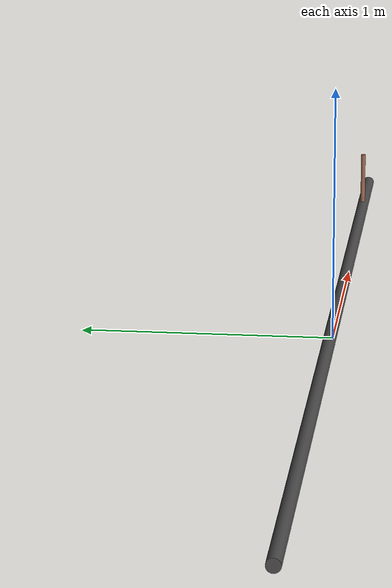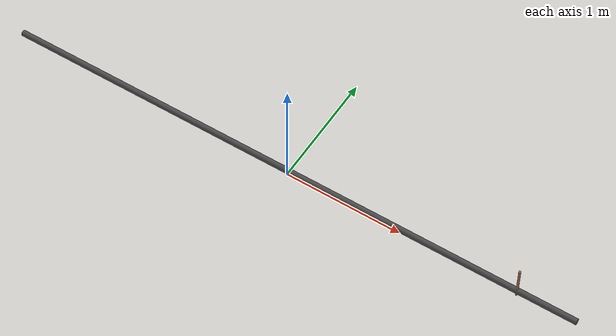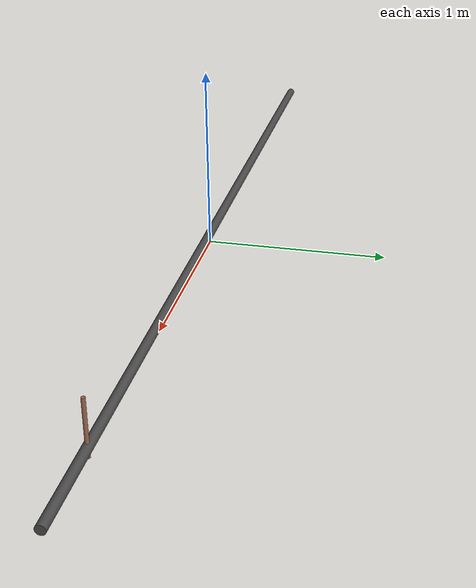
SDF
<?xml version="1.0" ?>
<sdf version="1.8">
  <model name="irrigation_pipe">
    <static>true</static>

    <!-- Main pipe -->
    <link name="main_pipe">
      <pose>0 0 0.05 0 1.57 0</pose>
      <collision name="main_pipe_collision">
        <geometry>
          <cylinder>
            <radius>0.025</radius>
            <length>5.0</length>
          </cylinder>
        </geometry>
      </collision>
      <visual name="main_pipe_visual">
        <geometry>
          <cylinder>
            <radius>0.025</radius>
            <length>5.0</length>
          </cylinder>
        </geometry>
        <material>
          <ambient>0.2 0.2 0.2 1</ambient>
          <diffuse>0.3 0.3 0.3 1</diffuse>
          <specular>0.5 0.5 0.5 1</specular>
        </material>
      </visual>
    </link>

    <!-- Drip emitter 1 -->
    <link name="emitter_1">
      <pose>1.0 0 0.05 0 0 0</pose>
      <collision name="emitter_1_collision">
        <geometry>
          <sphere>
            <radius>0.01</radius>
          </sphere>
        </geometry>
      </collision>
      <visual name="emitter_1_visual">
        <geometry>
          <sphere>
            <radius>0.01</radius>
          </sphere>
        </geometry>
        <material>
          <ambient>0.1 0.1 0.1 1</ambient>
          <diffuse>0.2 0.2 0.2 1</diffuse>
          <specular>0.3 0.3 0.3 1</specular>
        </material>
      </visual>
    </link>

    <!-- Drip emitter 2 -->
    <link name="emitter_2">
      <pose>-1.0 0 0.05 0 0 0</pose>
      <collision name="emitter_2_collision">
        <geometry>
          <sphere>
            <radius>0.01</radius>
          </sphere>
        </geometry>
      </collision>
      <visual name="emitter_2_visual">
        <geometry>
          <sphere>
            <radius>0.01</radius>
          </sphere>
        </geometry>
        <material>
          <ambient>0.1 0.1 0.1 1</ambient>
          <diffuse>0.2 0.2 0.2 1</diffuse>
          <specular>0.3 0.3 0.3 1</specular>
        </material>
      </visual>
    </link>

    <!-- Support stakes -->
    <link name="stake_1">
      <pose>2.0 0 0.15 0 0 0</pose>
      <collision name="stake_1_collision">
        <geometry>
          <cylinder>
            <radius>0.01</radius>
            <length>0.3</length>
          </cylinder>
        </geometry>
      </collision>
      <visual name="stake_1_visual">
        <geometry>
          <cylinder>
            <radius>0.01</radius>
            <length>0.3</length>
          </cylinder>
        </geometry>
        <material>
          <ambient>0.4 0.3 0.2 1</ambient>
          <diffuse>0.6 0.4 0.3 1</diffuse>
          <specular>0.1 0.1 0.1 1</specular>
        </material>
      </visual>
    </link>

    <!-- Fixed joints -->
    <joint name="pipe_to_emitter_1" type="fixed">
      <parent>main_pipe</parent>
      <child>emitter_1</child>
    </joint>

    <joint name="pipe_to_emitter_2" type="fixed">
      <parent>main_pipe</parent>
      <child>emitter_2</child>
    </joint>

    <joint name="pipe_to_stake_1" type="fixed">
      <parent>main_pipe</parent>
      <child>stake_1</child>
    </joint>
  </model>
</sdf>
